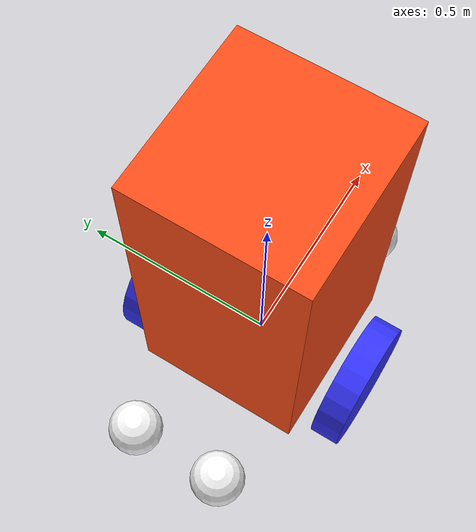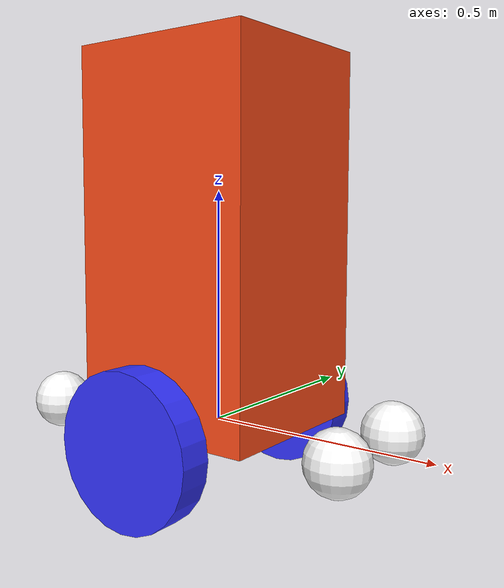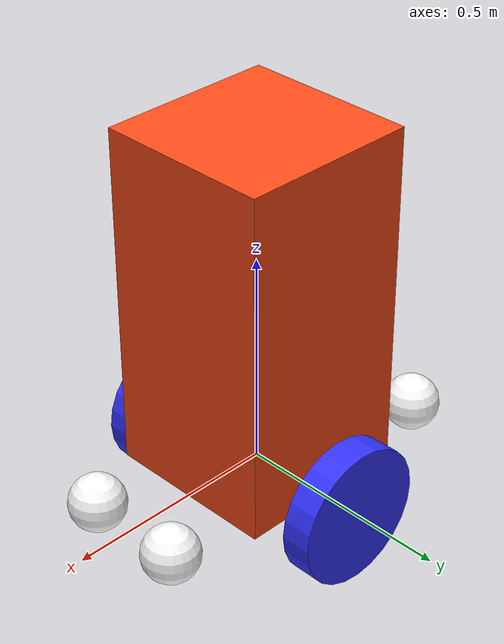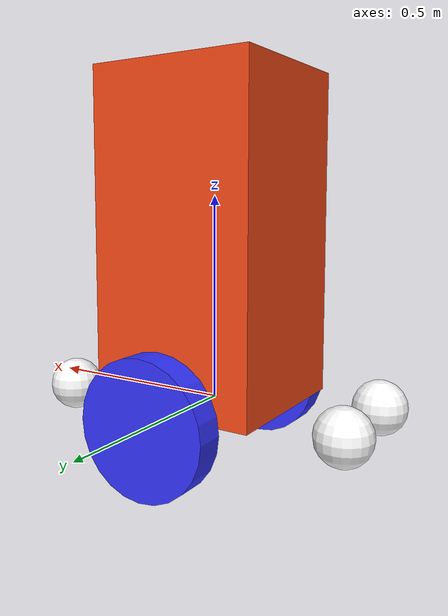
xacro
<?xml version="1.0"?>
<robot xmlns:xacro="http://www.ros.org/wiki/xacro" >

    <xacro:include filename="inertial_macros.xacro"/>

    <xacro:property name="chassis_length" value="0.41"/>
    <xacro:property name="chassis_width" value="0.402"/>
    <xacro:property name="chassis_height" value="0.8"/>
    <xacro:property name="chassis_mass" value="10.0"/>
    <xacro:property name="wheel_radius" value="0.1592"/>
    <xacro:property name="wheel_thickness" value="0.07"/>
    <xacro:property name="wheel_mass" value="0.05"/>
    <xacro:property name="wheel_offset_x" value="0.0"/>
    <xacro:property name="wheel_offset_y" value="0.272"/>
    <xacro:property name="wheel_offset_z" value="0.1"/>
    <xacro:property name="caster_wheel_radius" value="0.065"/>
    <xacro:property name="caster_wheel_mass" value="0.01"/>
    <xacro:property name="caster_wheel_offset_x" value="0.361"/>
    <xacro:property name="caster_wheel_offset_y" value="0.115"/>
    <xacro:property name="caster_wheel_offset_z" value="${wheel_offset_z - wheel_radius + caster_wheel_radius}"/>

    <material name="white">
        <color rgba="1 1 1 1" />
    </material>

    <material name="orange">
        <color rgba="1 0.3 0.1 1"/>
    </material>

    <material name="blue">
        <color rgba="0.2 0.2 1 1"/>
    </material>

    <material name="black">
        <color rgba="0 0 0 1"/>
    </material>

    <material name="gray">
        <color rgba="0 0 0 0.5"/>
    </material>

    <material name="red">
        <color rgba="1 0 0 1"/>
    </material>

    <!-- BASE LINK -->

    <link name="base_link">

    </link>

    <!-- BASE_FOOTPRINT LINK -->

    <joint name="base_footprint_joint" type="fixed">
        <parent link="base_link"/>
        <child link="base_footprint"/>
        <origin xyz="0 0 -${wheel_radius}" rpy="0 0 0"/>
    </joint>

    <link name="base_footprint">
    </link>

    <!-- CHASSIS LINK -->

    <joint name="chassis_joint" type="fixed">
        <parent link="base_link"/>
        <child link="chassis"/>
        <origin xyz="-${chassis_length/2} 0.0 0.0"/>
    </joint>

    <link name="chassis">
        <visual>
            <origin xyz="${chassis_length/2} 0 ${chassis_height/2}"/>
            <geometry>
                <box size="${chassis_length} ${chassis_width} ${chassis_height}"/>
            </geometry>
            <material name="orange"/>
        </visual>
        <collision>
            <origin xyz="${chassis_length/2} 0 ${chassis_height/2}"/>
            <geometry>
                <box size="${chassis_length} ${chassis_width} ${chassis_height}"/>
            </geometry>
        </collision>
        <xacro:inertial_box mass="0.5" x="${chassis_length}" y="${chassis_width}" z="${chassis_height}">
            <origin xyz="${chassis_length/2} 0 ${chassis_height/2}" rpy="0 0 0"/>
        </xacro:inertial_box>
    </link>

    <gazebo reference="chassis">
        <material>Gazebo/Orange</material>
    </gazebo>

    <!-- LEFT WHEEL LINK -->

    <joint name="left_wheel_joint" type="continuous">
        <parent link="base_link"/>
        <child link="left_wheel"/>
        <origin xyz="0 ${wheel_offset_y} 0" rpy="-${pi/2} 0 0" />
        <axis xyz="0 0 1"/>
    </joint>

    <link name="left_wheel">
        <visual>
            <geometry>
                <cylinder radius="${wheel_radius}" length="${wheel_thickness}"/>
            </geometry>
            <material name="blue"/>
        </visual>
        <collision>
            <geometry>
                <sphere radius="${wheel_radius}"/>
            </geometry>
        </collision>
        <xacro:inertial_cylinder mass="${wheel_mass}" length="${wheel_thickness}" radius="${wheel_radius}">
            <origin xyz="0 0 0" rpy="0 0 0"/>
        </xacro:inertial_cylinder>
    </link>

    <gazebo reference="left_wheel">
        <material>Gazebo/Blue</material>
    </gazebo>

    <!-- RIGHT WHEEL LINK -->

    <joint name="right_wheel_joint" type="continuous">
        <parent link="base_link"/>
        <child link="right_wheel"/>
        <origin xyz="0 ${-wheel_offset_y} 0" rpy="${pi/2} 0 0" />
        <axis xyz="0 0 -1"/>
    </joint>

    <link name="right_wheel">
        <visual>
            <geometry>
                <cylinder radius="${wheel_radius}" length="${wheel_thickness}"/>
            </geometry>
            <material name="blue"/>
        </visual>
        <collision>
            <geometry>
                <sphere radius="${wheel_radius}"/>
            </geometry>
        </collision>
        <xacro:inertial_cylinder mass="${wheel_mass}" length="${wheel_thickness}" radius="${wheel_radius}">
            <origin xyz="0 0 0" rpy="0 0 0"/>
        </xacro:inertial_cylinder>
    </link>

    <gazebo reference="right_wheel">
        <material>Gazebo/Blue</material>
    </gazebo>

    <!-- FRONT LEFT CASTER WHEEL LINK -->

    <joint name="caster_wheel_fl_joint" type="fixed">
        <parent link="chassis"/>
        <child link="caster_wheel_fl"/>
        <origin xyz="${caster_wheel_offset_x + (chassis_length/2)} ${caster_wheel_offset_y } ${caster_wheel_offset_z}"/>
    </joint>

    <link name="caster_wheel_fl">
        <visual>
            <geometry>
                <sphere radius="${caster_wheel_radius}"/>
            </geometry>
            <material name="white"/>
        </visual>
        <collision>
            <geometry>
                <sphere radius="${caster_wheel_radius}"/>
            </geometry>
        </collision>
        <xacro:inertial_sphere mass="${caster_wheel_mass }" radius="${caster_wheel_radius}">
            <origin xyz="0 0 0" rpy="0 0 0"/>
        </xacro:inertial_sphere>
    </link>

    <gazebo reference="caster_wheel_fl">
        <material>Gazebo/White</material>
        <mu1 value="0.001"/>
        <mu2 value="0.001"/>
    </gazebo>

    <!-- FRONT RIGHT CASTER WHEEL LINK -->

    <joint name="caster_wheel_fr_joint" type="fixed">
        <parent link="chassis"/>
        <child link="caster_wheel_fr"/>
        <origin xyz="${caster_wheel_offset_x + (chassis_length/2)} ${- caster_wheel_offset_y } ${caster_wheel_offset_z}"/>
    </joint>

    <link name="caster_wheel_fr">
        <visual>
            <geometry>
                <sphere radius="${caster_wheel_radius}"/>
            </geometry>
            <material name="white"/>
        </visual>
        <collision>
            <geometry>
                <sphere radius="${caster_wheel_radius}"/>
            </geometry>
        </collision>
        <xacro:inertial_sphere mass="${caster_wheel_mass }" radius="${caster_wheel_radius}">
            <origin xyz="0 0 0" rpy="0 0 0"/>
        </xacro:inertial_sphere>
    </link>

    <gazebo reference="caster_wheel_fr">
        <material>Gazebo/White</material>
        <mu1 value="0.001"/>
        <mu2 value="0.001"/>
    </gazebo>

<!-- BACK LEFT CASTER WHEEL LINK -->

    <joint name="caster_wheel_bl_joint" type="fixed">
        <parent link="chassis"/>
        <child link="caster_wheel_bl"/>
        <origin xyz="${ - caster_wheel_offset_x/2 } ${caster_wheel_offset_y } ${caster_wheel_offset_z}"/>
    </joint>

    <link name="caster_wheel_bl">
        <visual>
            <geometry>
                <sphere radius="${caster_wheel_radius}"/>
            </geometry>
            <material name="white"/>
        </visual>
        <collision>
            <geometry>
                <sphere radius="${caster_wheel_radius}"/>
            </geometry>
        </collision>
        <xacro:inertial_sphere mass="${caster_wheel_mass }" radius="${caster_wheel_radius}">
            <origin xyz="0 0 0" rpy="0 0 0"/>
        </xacro:inertial_sphere>
    </link>

    <gazebo reference="caster_wheel_bl">
        <material>Gazebo/White</material>
        <mu1 value="0.001"/>
        <mu2 value="0.001"/>
    </gazebo>

    <!-- BACK RIGHT CASTER WHEEL LINK -->

    <joint name="caster_wheel_br_joint" type="fixed">
        <parent link="chassis"/>
        <child link="caster_wheel_br"/>
        <origin xyz="${ - caster_wheel_offset_x /2} ${- caster_wheel_offset_y } ${caster_wheel_offset_z}"/>
    </joint>

    <link name="caster_wheel_br">
        <visual>
            <geometry>
                <sphere radius="${caster_wheel_radius}"/>
            </geometry>
            <material name="white"/>
        </visual>
        <collision>
            <geometry>
                <sphere radius="${caster_wheel_radius}"/>
            </geometry>
        </collision>
        <xacro:inertial_sphere mass="${caster_wheel_mass }" radius="${caster_wheel_radius}">
            <origin xyz="0 0 0" rpy="0 0 0"/>
        </xacro:inertial_sphere>
    </link>

    <gazebo reference="caster_wheel_br">
        <material>Gazebo/White</material>
        <mu1 value="0.001"/>
        <mu2 value="0.001"/>
    </gazebo>
</robot>
